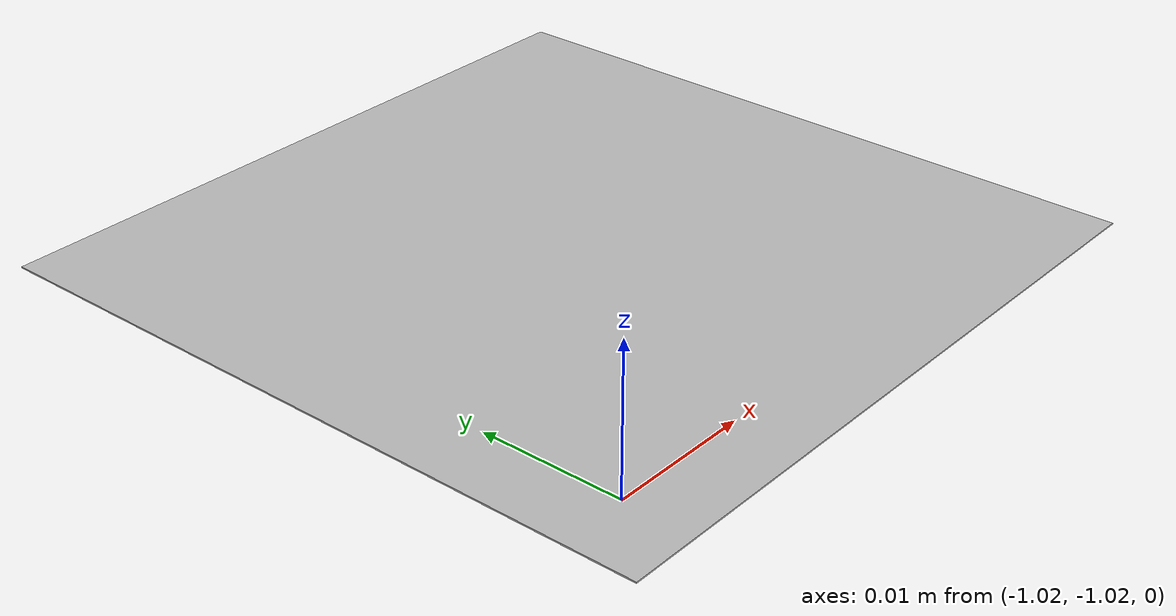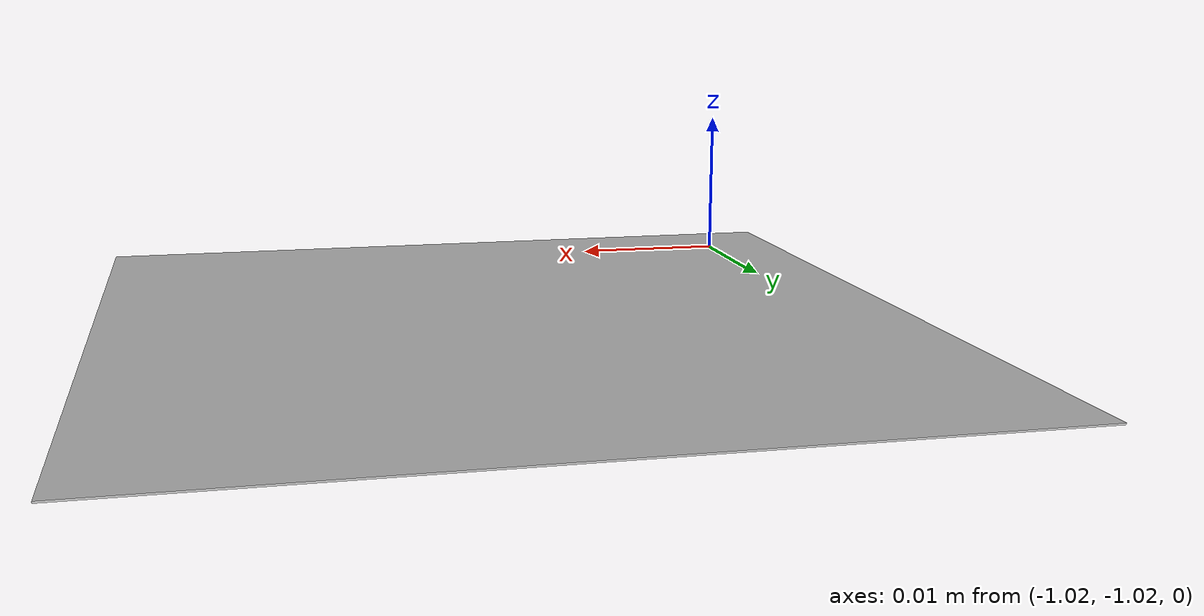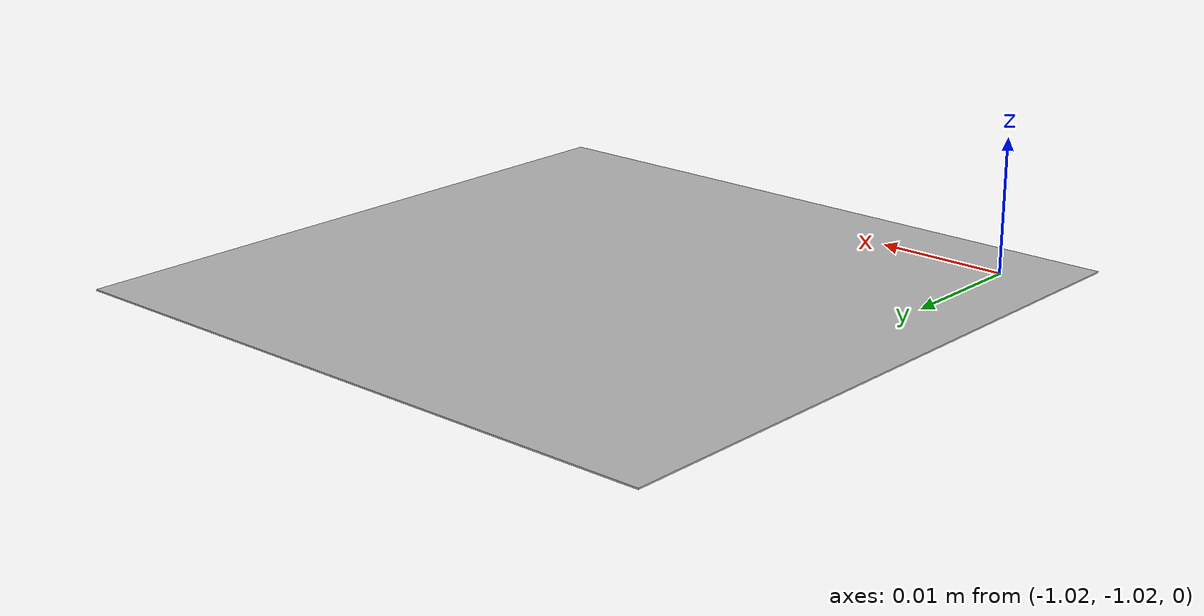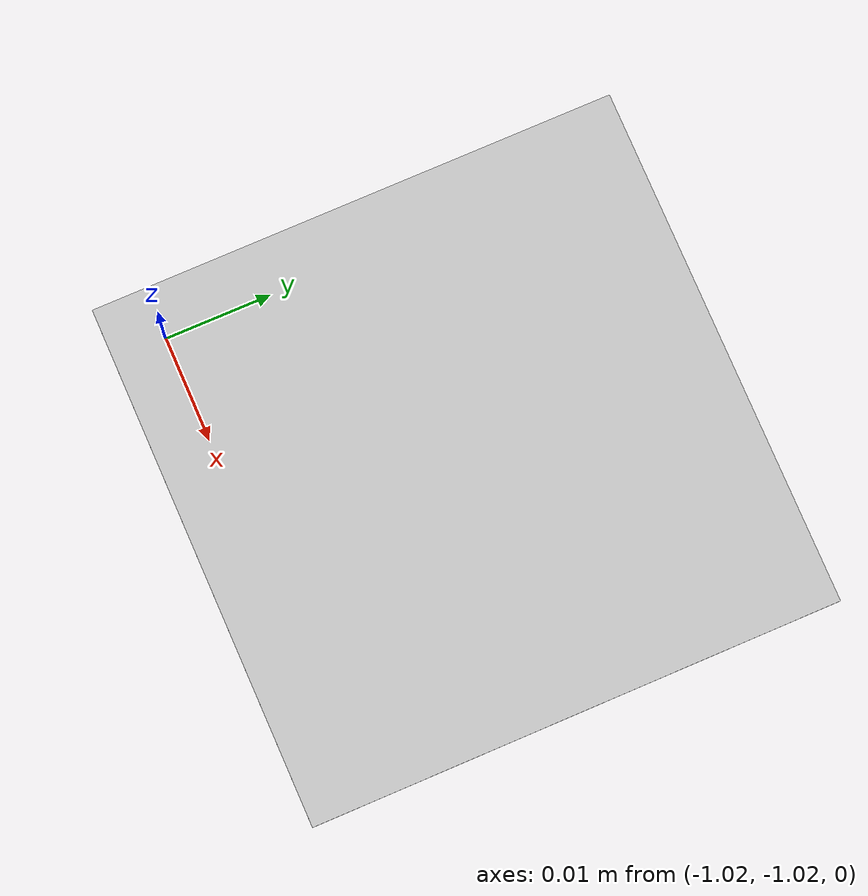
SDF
<?xml version="1.0" ?>
<sdf version="1.5">
  <model name="ar_tag_-1_-1">
    <pose>-1.0 -1.0 0 0 0 0</pose>
    <static>true</static>
    <link name="link">
      <collision name="collision">
        <geometry>
          <box>
            <size>0.05 0.05 .0001</size>
          </box>
        </geometry>
      </collision>
      <visual name="visual">
        <cast_shadows>false</cast_shadows>
        <geometry>
          <box>
            <size>0.05 0.05 .0001</size>
          </box>
        </geometry>
        <material>
          <script>
            <uri>model://ar_tag_-1_-1/materials/scripts</uri>
            <uri>model://ar_tag_-1_-1/materials/textures</uri>
            <name>ar_tag_-1_-1</name>
          </script>
        </material>
      </visual>
    </link>
  </model>
</sdf>
